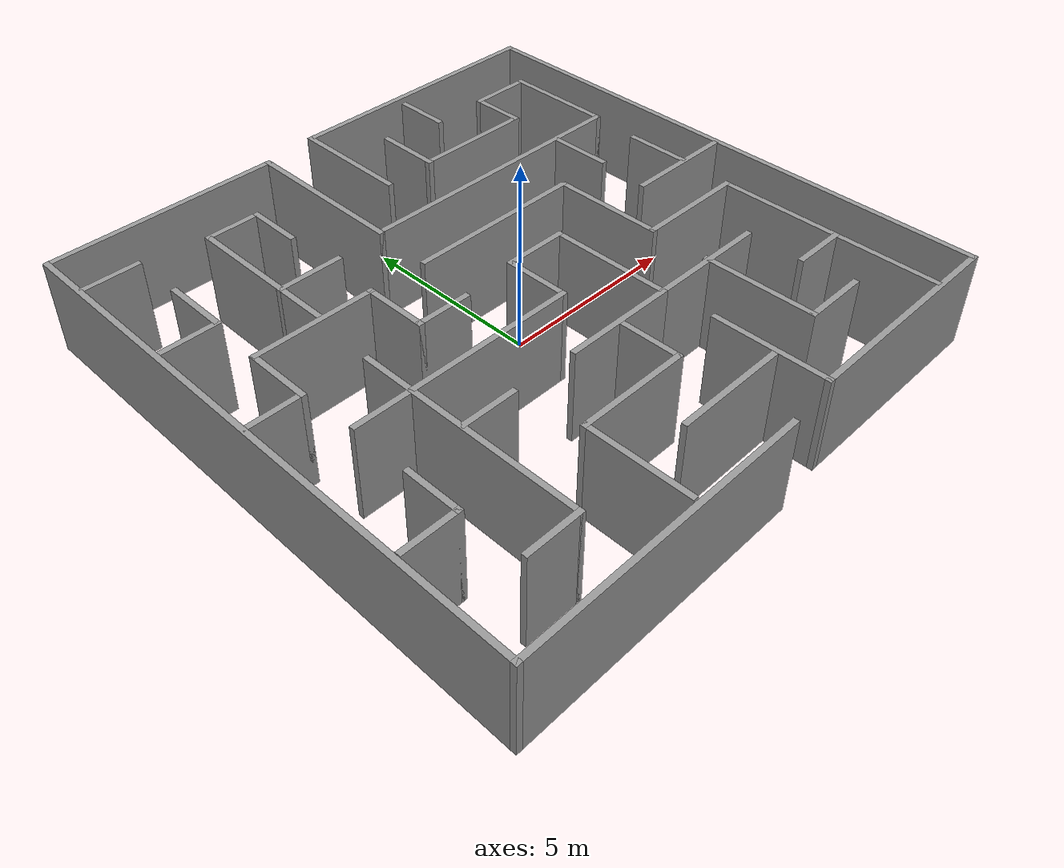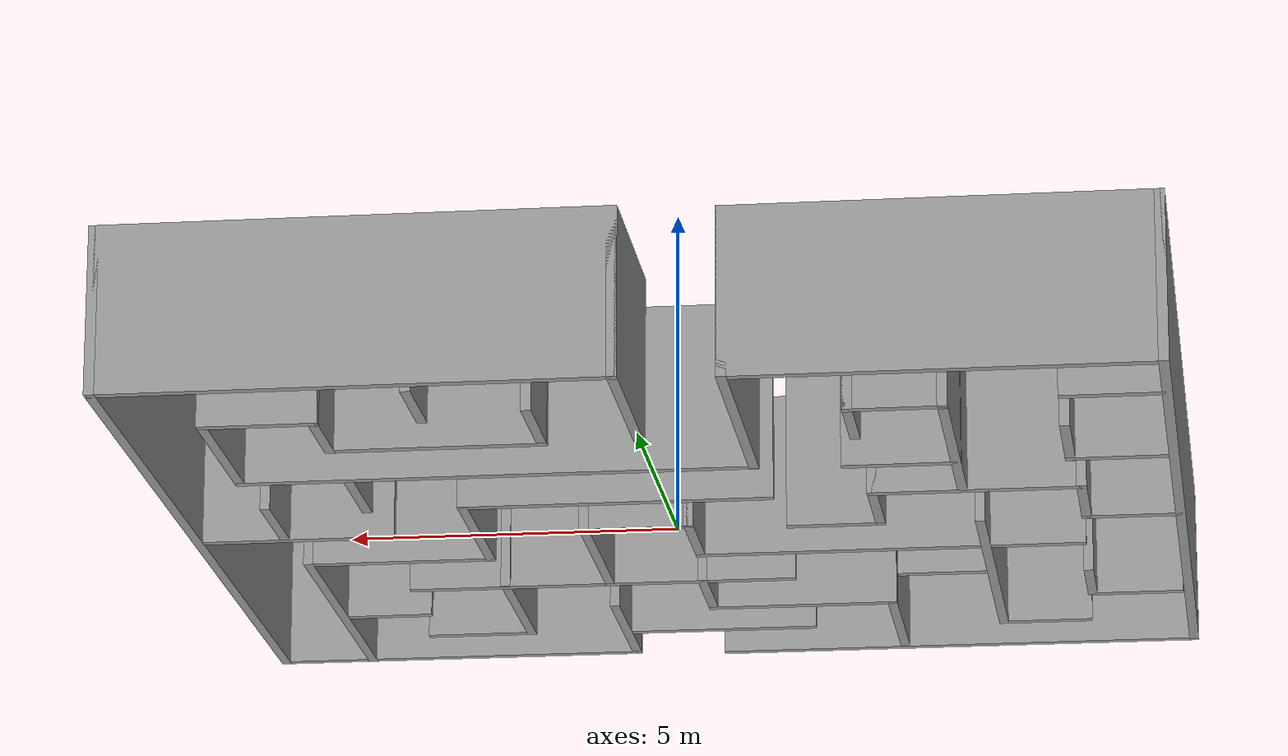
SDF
<?xml version='1.0'?>
<sdf version='1.6'>
  <model name='maze_runner'>
    <pose frame=''>-0.10353 0.142179 0 0 -0 0</pose>
    <link name='Wall_13'>
      <collision name='Wall_13_Collision'>
        <geometry>
          <box>
            <size>6.25 0.15 2.5</size>
          </box>
        </geometry>
        <pose frame=''>0 0 1.25 0 -0 0</pose>
      </collision>
      <visual name='Wall_13_Visual'>
        <pose frame=''>0 0 1.25 0 -0 0</pose>
        <geometry>
          <box>
            <size>6.25 0.15 2.5</size>
          </box>
        </geometry>
        <material>
          <script>
            <uri>file://media/materials/scripts/gazebo.material</uri>
            <name>Gazebo/Grey</name>
          </script>
          <ambient>1 1 1 1</ambient>
        </material>
      </visual>
      <pose frame=''>-4.425 7.33447 0 0 -0 0</pose>
    </link>
    <link name='Wall_14'>
      <collision name='Wall_14_Collision'>
        <geometry>
          <box>
            <size>4.5 0.15 2.5</size>
          </box>
        </geometry>
        <pose frame=''>0 0 1.25 0 -0 0</pose>
      </collision>
      <visual name='Wall_14_Visual'>
        <pose frame=''>0 0 1.25 0 -0 0</pose>
        <geometry>
          <box>
            <size>4.5 0.15 2.5</size>
          </box>
        </geometry>
        <material>
          <script>
            <uri>file://media/materials/scripts/gazebo.material</uri>
            <name>Gazebo/Grey</name>
          </script>
          <ambient>1 1 1 1</ambient>
        </material>
      </visual>
      <pose frame=''>-1.375 5.15947 0 0 0 -1.5708</pose>
    </link>
    <link name='Wall_15'>
      <collision name='Wall_15_Collision'>
        <geometry>
          <box>
            <size>7.75 0.15 2.5</size>
          </box>
        </geometry>
        <pose frame=''>0 0 1.25 0 -0 0</pose>
      </collision>
      <visual name='Wall_15_Visual'>
        <pose frame=''>0 0 1.25 0 -0 0</pose>
        <geometry>
          <box>
            <size>7.75 0.15 2.5</size>
          </box>
        </geometry>
        <material>
          <script>
            <uri>file://media/materials/scripts/gazebo.material</uri>
            <name>Gazebo/Grey</name>
          </script>
          <ambient>1 1 1 1</ambient>
        </material>
      </visual>
      <pose frame=''>2.425 2.98447 0 0 -0 0</pose>
    </link>
    <link name='Wall_16'>
      <collision name='Wall_16_Collision'>
        <geometry>
          <box>
            <size>3 0.15 2.5</size>
          </box>
        </geometry>
        <pose frame=''>0 0 1.25 0 -0 0</pose>
      </collision>
      <visual name='Wall_16_Visual'>
        <pose frame=''>0 0 1.25 0 -0 0</pose>
        <geometry>
          <box>
            <size>3 0.15 2.5</size>
          </box>
        </geometry>
        <material>
          <script>
            <uri>file://media/materials/scripts/gazebo.material</uri>
            <name>Gazebo/Grey</name>
          </script>
          <ambient>1 1 1 1</ambient>
        </material>
      </visual>
      <pose frame=''>6.225 4.40947 0 0 -0 1.5708</pose>
    </link>
    <link name='Wall_17'>
      <collision name='Wall_17_Collision'>
        <geometry>
          <box>
            <size>1.75 0.15 2.5</size>
          </box>
        </geometry>
        <pose frame=''>0 0 1.25 0 -0 0</pose>
      </collision>
      <visual name='Wall_17_Visual'>
        <pose frame=''>0 0 1.25 0 -0 0</pose>
        <geometry>
          <box>
            <size>1.75 0.15 2.5</size>
          </box>
        </geometry>
        <material>
          <script>
            <uri>file://media/materials/scripts/gazebo.material</uri>
            <name>Gazebo/Grey</name>
          </script>
          <ambient>1 1 1 1</ambient>
        </material>
      </visual>
      <pose frame=''>5.425 5.83447 0 0 -0 3.14159</pose>
    </link>
    <link name='Wall_18'>
      <collision name='Wall_18_Collision'>
        <geometry>
          <box>
            <size>1.5 0.15 2.5</size>
          </box>
        </geometry>
        <pose frame=''>0 0 1.25 0 -0 0</pose>
      </collision>
      <visual name='Wall_18_Visual'>
        <pose frame=''>0 0 1.25 0 -0 0</pose>
        <geometry>
          <box>
            <size>1.5 0.15 2.5</size>
          </box>
        </geometry>
        <material>
          <script>
            <uri>file://media/materials/scripts/gazebo.material</uri>
            <name>Gazebo/Grey</name>
          </script>
          <ambient>1 1 1 1</ambient>
        </material>
      </visual>
      <pose frame=''>4.625 5.15947 0 0 0 -1.5708</pose>
    </link>
    <link name='Wall_19'>
      <collision name='Wall_19_Collision'>
        <geometry>
          <box>
            <size>3.25 0.15 2.5</size>
          </box>
        </geometry>
        <pose frame=''>0 0 1.25 0 -0 0</pose>
      </collision>
      <visual name='Wall_19_Visual'>
        <pose frame=''>0 0 1.25 0 -0 0</pose>
        <geometry>
          <box>
            <size>3.25 0.15 2.5</size>
          </box>
        </geometry>
        <material>
          <script>
            <uri>file://media/materials/scripts/gazebo.material</uri>
            <name>Gazebo/Grey</name>
          </script>
          <ambient>1 1 1 1</ambient>
        </material>
      </visual>
      <pose frame=''>3.075 4.48447 0 0 -0 3.14159</pose>
    </link>
    <link name='Wall_20'>
      <collision name='Wall_20_Collision'>
        <geometry>
          <box>
            <size>1.75 0.15 2.5</size>
          </box>
        </geometry>
        <pose frame=''>0 0 1.25 0 -0 0</pose>
      </collision>
      <visual name='Wall_20_Visual'>
        <pose frame=''>0 0 1.25 0 -0 0</pose>
        <geometry>
          <box>
            <size>1.75 0.15 2.5</size>
          </box>
        </geometry>
        <material>
          <script>
            <uri>file://media/materials/scripts/gazebo.material</uri>
            <name>Gazebo/Grey</name>
          </script>
          <ambient>1 1 1 1</ambient>
        </material>
      </visual>
      <pose frame=''>1.525 5.28447 0 0 -0 1.5708</pose>
    </link>
    <link name='Wall_23'>
      <collision name='Wall_23_Collision'>
        <geometry>
          <box>
            <size>3.25 0.15 2.5</size>
          </box>
        </geometry>
        <pose frame=''>0 0 1.25 0 -0 0</pose>
      </collision>
      <visual name='Wall_23_Visual'>
        <pose frame=''>0 0 1.25 0 -0 0</pose>
        <geometry>
          <box>
            <size>3.25 0.15 2.5</size>
          </box>
        </geometry>
        <material>
          <script>
            <uri>file://media/materials/scripts/gazebo.material</uri>
            <name>Gazebo/Grey</name>
          </script>
          <ambient>1 1 1 1</ambient>
        </material>
      </visual>
      <pose frame=''>0.125 5.96553 0 0 -0 1.5708</pose>
    </link>
    <link name='Wall_24'>
      <collision name='Wall_24_Collision'>
        <geometry>
          <box>
            <size>7.5 0.15 2.5</size>
          </box>
        </geometry>
        <pose frame=''>0 0 1.25 0 -0 0</pose>
      </collision>
      <visual name='Wall_24_Visual'>
        <pose frame=''>0 0 1.25 0 -0 0</pose>
        <geometry>
          <box>
            <size>7.5 0.15 2.5</size>
          </box>
        </geometry>
        <material>
          <script>
            <uri>file://media/materials/scripts/gazebo.material</uri>
            <name>Gazebo/Grey</name>
          </script>
          <ambient>1 1 1 1</ambient>
        </material>
      </visual>
      <pose frame=''>3.8 7.51553 0 0 -0 0</pose>
    </link>
    <link name='Wall_25'>
      <collision name='Wall_25_Collision'>
        <geometry>
          <box>
            <size>15 0.15 2.5</size>
          </box>
        </geometry>
        <pose frame=''>0 0 1.25 0 -0 0</pose>
      </collision>
      <visual name='Wall_25_Visual'>
        <pose frame=''>0 0 1.25 0 -0 0</pose>
        <geometry>
          <box>
            <size>15 0.15 2.5</size>
          </box>
        </geometry>
        <material>
          <script>
            <uri>file://media/materials/scripts/gazebo.material</uri>
            <name>Gazebo/Grey</name>
          </script>
          <ambient>1 1 1 1</ambient>
        </material>
      </visual>
      <pose frame=''>7.475 0.090529 0 0 0 -1.5708</pose>
    </link>
    <link name='Wall_26'>
      <collision name='Wall_26_Collision'>
        <geometry>
          <box>
            <size>6 0.15 2.5</size>
          </box>
        </geometry>
        <pose frame=''>0 0 1.25 0 -0 0</pose>
      </collision>
      <visual name='Wall_26_Visual'>
        <pose frame=''>0 0 1.25 0 -0 0</pose>
        <geometry>
          <box>
            <size>6 0.15 2.5</size>
          </box>
        </geometry>
        <material>
          <script>
            <uri>file://media/materials/scripts/gazebo.material</uri>
            <name>Gazebo/Grey</name>
          </script>
          <ambient>1 1 1 1</ambient>
        </material>
      </visual>
      <pose frame=''>4.55 -7.33447 0 0 -0 3.14159</pose>
    </link>
    <link name='Wall_27'>
      <collision name='Wall_27_Collision'>
        <geometry>
          <box>
            <size>3 0.15 2.5</size>
          </box>
        </geometry>
        <pose frame=''>0 0 1.25 0 -0 0</pose>
      </collision>
      <visual name='Wall_27_Visual'>
        <pose frame=''>0 0 1.25 0 -0 0</pose>
        <geometry>
          <box>
            <size>3 0.15 2.5</size>
          </box>
        </geometry>
        <material>
          <script>
            <uri>file://media/materials/scripts/gazebo.material</uri>
            <name>Gazebo/Grey</name>
          </script>
          <ambient>1 1 1 1</ambient>
        </material>
      </visual>
      <pose frame=''>1.625 -5.90947 0 0 -0 1.5708</pose>
    </link>
    <link name='Wall_29'>
      <collision name='Wall_29_Collision'>
        <geometry>
          <box>
            <size>1.5 0.15 2.5</size>
          </box>
        </geometry>
        <pose frame=''>0 0 1.25 0 -0 0</pose>
      </collision>
      <visual name='Wall_29_Visual'>
        <pose frame=''>0 0 1.25 0 -0 0</pose>
        <geometry>
          <box>
            <size>1.5 0.15 2.5</size>
          </box>
        </geometry>
        <material>
          <script>
            <uri>file://media/materials/scripts/gazebo.material</uri>
            <name>Gazebo/Grey</name>
          </script>
          <ambient>1 1 1 1</ambient>
        </material>
      </visual>
      <pose frame=''>3.06764 6.48159 0 0 -0 1.5708</pose>
    </link>
    <link name='Wall_31'>
      <collision name='Wall_31_Collision'>
        <geometry>
          <box>
            <size>1.75 0.15 2.5</size>
          </box>
        </geometry>
        <pose frame=''>0 0 1.25 0 -0 0</pose>
      </collision>
      <visual name='Wall_31_Visual'>
        <pose frame=''>0 0 1.25 0 -0 0</pose>
        <geometry>
          <box>
            <size>1.75 0.15 2.5</size>
          </box>
        </geometry>
        <material>
          <script>
            <uri>file://media/materials/scripts/gazebo.material</uri>
            <name>Gazebo/Grey</name>
          </script>
          <ambient>1 1 1 1</ambient>
        </material>
      </visual>
      <pose frame=''>4.61921 2.16589 0 0 -0 1.5708</pose>
    </link>
    <link name='Wall_33'>
      <collision name='Wall_33_Collision'>
        <geometry>
          <box>
            <size>1.75 0.15 2.5</size>
          </box>
        </geometry>
        <pose frame=''>0 0 1.25 0 -0 0</pose>
      </collision>
      <visual name='Wall_33_Visual'>
        <pose frame=''>0 0 1.25 0 -0 0</pose>
        <geometry>
          <box>
            <size>1.75 0.15 2.5</size>
          </box>
        </geometry>
        <material>
          <script>
            <uri>file://media/materials/scripts/gazebo.material</uri>
            <name>Gazebo/Grey</name>
          </script>
          <ambient>1 1 1 1</ambient>
        </material>
      </visual>
      <pose frame=''>6.11728 0.779896 0 0 0 -1.5708</pose>
    </link>
    <link name='Wall_35'>
      <collision name='Wall_35_Collision'>
        <geometry>
          <box>
            <size>3 0.15 2.5</size>
          </box>
        </geometry>
        <pose frame=''>0 0 1.25 0 -0 0</pose>
      </collision>
      <visual name='Wall_35_Visual'>
        <pose frame=''>0 0 1.25 0 -0 0</pose>
        <geometry>
          <box>
            <size>3 0.15 2.5</size>
          </box>
        </geometry>
        <material>
          <script>
            <uri>file://media/materials/scripts/gazebo.material</uri>
            <name>Gazebo/Grey</name>
          </script>
          <ambient>1 1 1 1</ambient>
        </material>
      </visual>
      <pose frame=''>5.9372 -0.078681 0 0 -0 0</pose>
    </link>
    <link name='Wall_37'>
      <collision name='Wall_37_Collision'>
        <geometry>
          <box>
            <size>1.5 0.15 2.5</size>
          </box>
        </geometry>
        <pose frame=''>0 0 1.25 0 -0 0</pose>
      </collision>
      <visual name='Wall_37_Visual'>
        <pose frame=''>0 0 1.25 0 -0 0</pose>
        <geometry>
          <box>
            <size>1.5 0.15 2.5</size>
          </box>
        </geometry>
        <material>
          <script>
            <uri>file://media/materials/scripts/gazebo.material</uri>
            <name>Gazebo/Grey</name>
          </script>
          <ambient>1 1 1 1</ambient>
        </material>
      </visual>
      <pose frame=''>-6.70279 5.9136 0 0 -0 3.14159</pose>
    </link>
    <link name='Wall_39'>
      <collision name='Wall_39_Collision'>
        <geometry>
          <box>
            <size>1.75 0.15 2.5</size>
          </box>
        </geometry>
        <pose frame=''>0 0 1.25 0 -0 0</pose>
      </collision>
      <visual name='Wall_39_Visual'>
        <pose frame=''>0 0 1.25 0 -0 0</pose>
        <geometry>
          <box>
            <size>1.75 0.15 2.5</size>
          </box>
        </geometry>
        <material>
          <script>
            <uri>file://media/materials/scripts/gazebo.material</uri>
            <name>Gazebo/Grey</name>
          </script>
          <ambient>1 1 1 1</ambient>
        </material>
      </visual>
      <pose frame=''>-5.97429 3.66903 0 0 0 -1.5708</pose>
    </link>
    <link name='Wall_40'>
      <collision name='Wall_40_Collision'>
        <geometry>
          <box>
            <size>1.5 0.15 2.5</size>
          </box>
        </geometry>
        <pose frame=''>0 0 1.25 0 -0 0</pose>
      </collision>
      <visual name='Wall_40_Visual'>
        <pose frame=''>0 0 1.25 0 -0 0</pose>
        <geometry>
          <box>
            <size>1.5 0.15 2.5</size>
          </box>
        </geometry>
        <material>
          <script>
            <uri>file://media/materials/scripts/gazebo.material</uri>
            <name>Gazebo/Grey</name>
          </script>
          <ambient>1 1 1 1</ambient>
        </material>
      </visual>
      <pose frame=''>-6.64928 2.86903 0 0 -0 3.14159</pose>
    </link>
    <link name='Wall_42'>
      <collision name='Wall_42_Collision'>
        <geometry>
          <box>
            <size>1.5 0.15 2.5</size>
          </box>
        </geometry>
        <pose frame=''>0 0 1.25 0 -0 0</pose>
      </collision>
      <visual name='Wall_42_Visual'>
        <pose frame=''>0 0 1.25 0 -0 0</pose>
        <geometry>
          <box>
            <size>1.5 0.15 2.5</size>
          </box>
        </geometry>
        <material>
          <script>
            <uri>file://media/materials/scripts/gazebo.material</uri>
            <name>Gazebo/Grey</name>
          </script>
          <ambient>1 1 1 1</ambient>
        </material>
      </visual>
      <pose frame=''>-6.74385 -0.185686 0 0 -0 0</pose>
    </link>
    <link name='Wall_43'>
      <collision name='Wall_43_Collision'>
        <geometry>
          <box>
            <size>1.75 0.15 2.5</size>
          </box>
        </geometry>
        <pose frame=''>0 0 1.25 0 -0 0</pose>
      </collision>
      <visual name='Wall_43_Visual'>
        <pose frame=''>0 0 1.25 0 -0 0</pose>
        <geometry>
          <box>
            <size>1.75 0.15 2.5</size>
          </box>
        </geometry>
        <material>
          <script>
            <uri>file://media/materials/scripts/gazebo.material</uri>
            <name>Gazebo/Grey</name>
          </script>
          <ambient>1 1 1 1</ambient>
        </material>
      </visual>
      <pose frame=''>-6.06885 0.614314 0 0 -0 1.5708</pose>
    </link>
    <link name='Wall_44'>
      <collision name='Wall_44_Collision'>
        <geometry>
          <box>
            <size>3.25 0.15 2.5</size>
          </box>
        </geometry>
        <pose frame=''>0 0 1.25 0 -0 0</pose>
      </collision>
      <visual name='Wall_44_Visual'>
        <pose frame=''>0 0 1.25 0 -0 0</pose>
        <geometry>
          <box>
            <size>3.25 0.15 2.5</size>
          </box>
        </geometry>
        <material>
          <script>
            <uri>file://media/materials/scripts/gazebo.material</uri>
            <name>Gazebo/Grey</name>
          </script>
          <ambient>1 1 1 1</ambient>
        </material>
      </visual>
      <pose frame=''>-4.51885 1.41431 0 0 -0 0</pose>
    </link>
    <link name='Wall_45'>
      <collision name='Wall_45_Collision'>
        <geometry>
          <box>
            <size>1.75 0.15 2.5</size>
          </box>
        </geometry>
        <pose frame=''>0 0 1.25 0 -0 0</pose>
      </collision>
      <visual name='Wall_45_Visual'>
        <pose frame=''>0 0 1.25 0 -0 0</pose>
        <geometry>
          <box>
            <size>1.75 0.15 2.5</size>
          </box>
        </geometry>
        <material>
          <script>
            <uri>file://media/materials/scripts/gazebo.material</uri>
            <name>Gazebo/Grey</name>
          </script>
          <ambient>1 1 1 1</ambient>
        </material>
      </visual>
      <pose frame=''>-2.96885 0.614314 0 0 0 -1.5708</pose>
    </link>
    <link name='Wall_46'>
      <collision name='Wall_46_Collision'>
        <geometry>
          <box>
            <size>1.5 0.15 2.5</size>
          </box>
        </geometry>
        <pose frame=''>0 0 1.25 0 -0 0</pose>
      </collision>
      <visual name='Wall_46_Visual'>
        <pose frame=''>0 0 1.25 0 -0 0</pose>
        <geometry>
          <box>
            <size>1.5 0.15 2.5</size>
          </box>
        </geometry>
        <material>
          <script>
            <uri>file://media/materials/scripts/gazebo.material</uri>
            <name>Gazebo/Grey</name>
          </script>
          <ambient>1 1 1 1</ambient>
        </material>
      </visual>
      <pose frame=''>-2.29385 -0.185686 0 0 -0 0</pose>
    </link>
    <link name='Wall_48'>
      <collision name='Wall_48_Collision'>
        <geometry>
          <box>
            <size>4.25 0.15 2.5</size>
          </box>
        </geometry>
        <pose frame=''>0 0 1.25 0 -0 0</pose>
      </collision>
      <visual name='Wall_48_Visual'>
        <pose frame=''>0 0 1.25 0 -0 0</pose>
        <geometry>
          <box>
            <size>4.25 0.15 2.5</size>
          </box>
        </geometry>
        <material>
          <script>
            <uri>file://media/materials/scripts/gazebo.material</uri>
            <name>Gazebo/Grey</name>
          </script>
          <ambient>1 1 1 1</ambient>
        </material>
      </visual>
      <pose frame=''>-4.31571 3.57639 0 0 -0 1.5708</pose>
    </link>
    <link name='Wall_49'>
      <collision name='Wall_49_Collision'>
        <geometry>
          <box>
            <size>1.5 0.15 2.5</size>
          </box>
        </geometry>
        <pose frame=''>0 0 1.25 0 -0 0</pose>
      </collision>
      <visual name='Wall_49_Visual'>
        <pose frame=''>0 0 1.25 0 -0 0</pose>
        <geometry>
          <box>
            <size>1.5 0.15 2.5</size>
          </box>
        </geometry>
        <material>
          <script>
            <uri>file://media/materials/scripts/gazebo.material</uri>
            <name>Gazebo/Grey</name>
          </script>
          <ambient>1 1 1 1</ambient>
        </material>
      </visual>
      <pose frame=''>-3.64071 5.62639 0 0 -0 0</pose>
    </link>
    <link name='Wall_50'>
      <collision name='Wall_50_Collision'>
        <geometry>
          <box>
            <size>1.5 0.15 2.5</size>
          </box>
        </geometry>
        <pose frame=''>0 0 1.25 0 -0 0</pose>
      </collision>
      <visual name='Wall_50_Visual'>
        <pose frame=''>0 0 1.25 0 -0 0</pose>
        <geometry>
          <box>
            <size>1.5 0.15 2.5</size>
          </box>
        </geometry>
        <material>
          <script>
            <uri>file://media/materials/scripts/gazebo.material</uri>
            <name>Gazebo/Grey</name>
          </script>
          <ambient>1 1 1 1</ambient>
        </material>
      </visual>
      <pose frame=''>-2.96571 4.95139 0 0 0 -1.5708</pose>
    </link>
    <link name='Wall_52'>
      <collision name='Wall_52_Collision'>
        <geometry>
          <box>
            <size>1.75 0.15 2.5</size>
          </box>
        </geometry>
        <pose frame=''>0 0 1.25 0 -0 0</pose>
      </collision>
      <visual name='Wall_52_Visual'>
        <pose frame=''>0 0 1.25 0 -0 0</pose>
        <geometry>
          <box>
            <size>1.75 0.15 2.5</size>
          </box>
        </geometry>
        <material>
          <script>
            <uri>file://media/materials/scripts/gazebo.material</uri>
            <name>Gazebo/Grey</name>
          </script>
          <ambient>1 1 1 1</ambient>
        </material>
      </visual>
      <pose frame=''>-3.51571 2.86396 0 0 -0 0</pose>
    </link>
    <link name='Wall_55'>
      <collision name='Wall_55_Collision'>
        <geometry>
          <box>
            <size>1.5 0.15 2.5</size>
          </box>
        </geometry>
        <pose frame=''>0 0 1.25 0 -0 0</pose>
      </collision>
      <visual name='Wall_55_Visual'>
        <pose frame=''>0 0 1.25 0 -0 0</pose>
        <geometry>
          <box>
            <size>1.5 0.15 2.5</size>
          </box>
        </geometry>
        <material>
          <script>
            <uri>file://media/materials/scripts/gazebo.material</uri>
            <name>Gazebo/Grey</name>
          </script>
          <ambient>1 1 1 1</ambient>
        </material>
      </visual>
      <pose frame=''>-6.63685 -4.57289 0 0 -0 0</pose>
    </link>
    <link name='Wall_56'>
      <collision name='Wall_56_Collision'>
        <geometry>
          <box>
            <size>1.5 0.15 2.5</size>
          </box>
        </geometry>
        <pose frame=''>0 0 1.25 0 -0 0</pose>
      </collision>
      <visual name='Wall_56_Visual'>
        <pose frame=''>0 0 1.25 0 -0 0</pose>
        <geometry>
          <box>
            <size>1.5 0.15 2.5</size>
          </box>
        </geometry>
        <material>
          <script>
            <uri>file://media/materials/scripts/gazebo.material</uri>
            <name>Gazebo/Grey</name>
          </script>
          <ambient>1 1 1 1</ambient>
        </material>
      </visual>
      <pose frame=''>-5.96185 -3.89789 0 0 -0 1.5708</pose>
    </link>
    <link name='Wall_58'>
      <collision name='Wall_58_Collision'>
        <geometry>
          <box>
            <size>1.5 0.15 2.5</size>
          </box>
        </geometry>
        <pose frame=''>0 0 1.25 0 -0 0</pose>
      </collision>
      <visual name='Wall_58_Visual'>
        <pose frame=''>0 0 1.25 0 -0 0</pose>
        <geometry>
          <box>
            <size>1.5 0.15 2.5</size>
          </box>
        </geometry>
        <material>
          <script>
            <uri>file://media/materials/scripts/gazebo.material</uri>
            <name>Gazebo/Grey</name>
          </script>
          <ambient>1 1 1 1</ambient>
        </material>
      </visual>
      <pose frame=''>-5.13878 -6.12446 0 0 -0 0</pose>
    </link>
    <link name='Wall_59'>
      <collision name='Wall_59_Collision'>
        <geometry>
          <box>
            <size>6 0.15 2.5</size>
          </box>
        </geometry>
        <pose frame=''>0 0 1.25 0 -0 0</pose>
      </collision>
      <visual name='Wall_59_Visual'>
        <pose frame=''>0 0 1.25 0 -0 0</pose>
        <geometry>
          <box>
            <size>6 0.15 2.5</size>
          </box>
        </geometry>
        <material>
          <script>
            <uri>file://media/materials/scripts/gazebo.material</uri>
            <name>Gazebo/Grey</name>
          </script>
          <ambient>1 1 1 1</ambient>
        </material>
      </visual>
      <pose frame=''>-4.46378 -3.19946 0 0 -0 1.5708</pose>
    </link>
    <link name='Wall_61'>
      <collision name='Wall_61_Collision'>
        <geometry>
          <box>
            <size>6 0.15 2.5</size>
          </box>
        </geometry>
        <pose frame=''>0 0 1.25 0 -0 0</pose>
      </collision>
      <visual name='Wall_61_Visual'>
        <pose frame=''>0 0 1.25 0 -0 0</pose>
        <geometry>
          <box>
            <size>6 0.15 2.5</size>
          </box>
        </geometry>
        <material>
          <script>
            <uri>file://media/materials/scripts/gazebo.material</uri>
            <name>Gazebo/Grey</name>
          </script>
          <ambient>1 1 1 1</ambient>
        </material>
      </visual>
      <pose frame=''>-2.99578 -1.63025 0 0 -0 0</pose>
    </link>
    <link name='Wall_62'>
      <collision name='Wall_62_Collision'>
        <geometry>
          <box>
            <size>1.75 0.15 2.5</size>
          </box>
        </geometry>
        <pose frame=''>0 0 1.25 0 -0 0</pose>
      </collision>
      <visual name='Wall_62_Visual'>
        <pose frame=''>0 0 1.25 0 -0 0</pose>
        <geometry>
          <box>
            <size>1.75 0.15 2.5</size>
          </box>
        </geometry>
        <material>
          <script>
            <uri>file://media/materials/scripts/gazebo.material</uri>
            <name>Gazebo/Grey</name>
          </script>
          <ambient>1 1 1 1</ambient>
        </material>
      </visual>
      <pose frame=''>-0.070783 -0.830254 0 0 -0 1.5708</pose>
    </link>
    <link name='Wall_63'>
      <collision name='Wall_63_Collision'>
        <geometry>
          <box>
            <size>1.75 0.15 2.5</size>
          </box>
        </geometry>
        <pose frame=''>0 0 1.25 0 -0 0</pose>
      </collision>
      <visual name='Wall_63_Visual'>
        <pose frame=''>0 0 1.25 0 -0 0</pose>
        <geometry>
          <box>
            <size>1.75 0.15 2.5</size>
          </box>
        </geometry>
        <material>
          <script>
            <uri>file://media/materials/scripts/gazebo.material</uri>
            <name>Gazebo/Grey</name>
          </script>
          <ambient>1 1 1 1</ambient>
        </material>
      </visual>
      <pose frame=''>0.729217 -0.030254 0 0 -0 0</pose>
    </link>
    <link name='Wall_64'>
      <collision name='Wall_64_Collision'>
        <geometry>
          <box>
            <size>3.25 0.15 2.5</size>
          </box>
        </geometry>
        <pose frame=''>0 0 1.25 0 -0 0</pose>
      </collision>
      <visual name='Wall_64_Visual'>
        <pose frame=''>0 0 1.25 0 -0 0</pose>
        <geometry>
          <box>
            <size>3.25 0.15 2.5</size>
          </box>
        </geometry>
        <material>
          <script>
            <uri>file://media/materials/scripts/gazebo.material</uri>
            <name>Gazebo/Grey</name>
          </script>
          <ambient>1 1 1 1</ambient>
        </material>
      </visual>
      <pose frame=''>1.52922 -1.58025 0 0 0 -1.5708</pose>
    </link>
    <link name='Wall_65'>
      <collision name='Wall_65_Collision'>
        <geometry>
          <box>
            <size>3.25 0.15 2.5</size>
          </box>
        </geometry>
        <pose frame=''>0 0 1.25 0 -0 0</pose>
      </collision>
      <visual name='Wall_65_Visual'>
        <pose frame=''>0 0 1.25 0 -0 0</pose>
        <geometry>
          <box>
            <size>3.25 0.15 2.5</size>
          </box>
        </geometry>
        <material>
          <script>
            <uri>file://media/materials/scripts/gazebo.material</uri>
            <name>Gazebo/Grey</name>
          </script>
          <ambient>1 1 1 1</ambient>
        </material>
      </visual>
      <pose frame=''>3.07922 -3.13025 0 0 -0 0</pose>
    </link>
    <link name='Wall_67'>
      <collision name='Wall_67_Collision'>
        <geometry>
          <box>
            <size>3 0.15 2.5</size>
          </box>
        </geometry>
        <pose frame=''>0 0 1.25 0 -0 0</pose>
      </collision>
      <visual name='Wall_67_Visual'>
        <pose frame=''>0 0 1.25 0 -0 0</pose>
        <geometry>
          <box>
            <size>3 0.15 2.5</size>
          </box>
        </geometry>
        <material>
          <script>
            <uri>file://media/materials/scripts/gazebo.material</uri>
            <name>Gazebo/Grey</name>
          </script>
          <ambient>1 1 1 1</ambient>
        </material>
      </visual>
      <pose frame=''>0.104217 -3.13025 0 0 -0 3.14159</pose>
    </link>
    <link name='Wall_69'>
      <collision name='Wall_69_Collision'>
        <geometry>
          <box>
            <size>1.75 0.15 2.5</size>
          </box>
        </geometry>
        <pose frame=''>0 0 1.25 0 -0 0</pose>
      </collision>
      <visual name='Wall_69_Visual'>
        <pose frame=''>0 0 1.25 0 -0 0</pose>
        <geometry>
          <box>
            <size>1.75 0.15 2.5</size>
          </box>
        </geometry>
        <material>
          <script>
            <uri>file://media/materials/scripts/gazebo.material</uri>
            <name>Gazebo/Grey</name>
          </script>
          <ambient>1 1 1 1</ambient>
        </material>
      </visual>
      <pose frame=''>0.071497 -3.92832 0 0 0 -1.5708</pose>
    </link>
    <link name='Wall_70'>
      <collision name='Wall_70_Collision'>
        <geometry>
          <box>
            <size>3 0.15 2.5</size>
          </box>
        </geometry>
        <pose frame=''>0 0 1.25 0 -0 0</pose>
      </collision>
      <visual name='Wall_70_Visual'>
        <pose frame=''>0 0 1.25 0 -0 0</pose>
        <geometry>
          <box>
            <size>3 0.15 2.5</size>
          </box>
        </geometry>
        <material>
          <script>
            <uri>file://media/materials/scripts/gazebo.material</uri>
            <name>Gazebo/Grey</name>
          </script>
          <ambient>1 1 1 1</ambient>
        </material>
      </visual>
      <pose frame=''>-1.3535 -4.72832 0 0 -0 3.14159</pose>
    </link>
    <link name='Wall_71'>
      <collision name='Wall_71_Collision'>
        <geometry>
          <box>
            <size>2.75 0.15 2.5</size>
          </box>
        </geometry>
        <pose frame=''>0 0 1.25 0 -0 0</pose>
      </collision>
      <visual name='Wall_71_Visual'>
        <pose frame=''>0 0 1.25 0 -0 0</pose>
        <geometry>
          <box>
            <size>2.75 0.15 2.5</size>
          </box>
        </geometry>
        <material>
          <script>
            <uri>file://media/materials/scripts/gazebo.material</uri>
            <name>Gazebo/Grey</name>
          </script>
          <ambient>1 1 1 1</ambient>
        </material>
      </visual>
      <pose frame=''>-2.7785 -6.02832 0 0 0 -1.5708</pose>
    </link>
    <link name='Wall_76'>
      <collision name='Wall_76_Collision'>
        <geometry>
          <box>
            <size>3 0.15 2.5</size>
          </box>
        </geometry>
        <pose frame=''>0 0 1.25 0 -0 0</pose>
      </collision>
      <visual name='Wall_76_Visual'>
        <pose frame=''>0 0 1.25 0 -0 0</pose>
        <geometry>
          <box>
            <size>3 0.15 2.5</size>
          </box>
        </geometry>
        <material>
          <script>
            <uri>file://media/materials/scripts/gazebo.material</uri>
            <name>Gazebo/Grey</name>
          </script>
          <ambient>1 1 1 1</ambient>
        </material>
      </visual>
      <pose frame=''>0.05193 -6.07096 0 0 -0 0</pose>
    </link>
    <link name='Wall_78'>
      <collision name='Wall_78_Collision'>
        <geometry>
          <box>
            <size>1.5 0.15 2.5</size>
          </box>
        </geometry>
        <pose frame=''>0 0 1.25 0 -0 0</pose>
      </collision>
      <visual name='Wall_78_Visual'>
        <pose frame=''>0 0 1.25 0 -0 0</pose>
        <geometry>
          <box>
            <size>1.5 0.15 2.5</size>
          </box>
        </geometry>
        <material>
          <script>
            <uri>file://media/materials/scripts/gazebo.material</uri>
            <name>Gazebo/Grey</name>
          </script>
          <ambient>1 1 1 1</ambient>
        </material>
      </visual>
      <pose frame=''>-3.74771 -3.07482 0 0 -0 0</pose>
    </link>
    <link name='Wall_8'>
      <collision name='Wall_8_Collision'>
        <geometry>
          <box>
            <size>7.75 0.15 2.5</size>
          </box>
        </geometry>
        <pose frame=''>0 0 1.25 0 -0 0</pose>
      </collision>
      <visual name='Wall_8_Visual'>
        <pose frame=''>0 0 1.25 0 -0 0</pose>
        <geometry>
          <box>
            <size>7.75 0.15 2.5</size>
          </box>
        </geometry>
        <material>
          <script>
            <uri>file://media/materials/scripts/gazebo.material</uri>
            <name>Gazebo/Grey</name>
          </script>
          <ambient>1 1 1 1</ambient>
        </material>
      </visual>
      <pose frame=''>-3.675 -7.51553 0 0 -0 3.14159</pose>
    </link>
    <link name='Wall_80'>
      <collision name='Wall_80_Collision'>
        <geometry>
          <box>
            <size>3 0.15 2.5</size>
          </box>
        </geometry>
        <pose frame=''>0 0 1.25 0 -0 0</pose>
      </collision>
      <visual name='Wall_80_Visual'>
        <pose frame=''>0 0 1.25 0 -0 0</pose>
        <geometry>
          <box>
            <size>3 0.15 2.5</size>
          </box>
        </geometry>
        <material>
          <script>
            <uri>file://media/materials/scripts/gazebo.material</uri>
            <name>Gazebo/Grey</name>
          </script>
          <ambient>1 1 1 1</ambient>
        </material>
      </visual>
      <pose frame=''>3.17464 -4.49982 0 0 0 -1.5708</pose>
    </link>
    <link name='Wall_81'>
      <collision name='Wall_81_Collision'>
        <geometry>
          <box>
            <size>1.75 0.15 2.5</size>
          </box>
        </geometry>
        <pose frame=''>0 0 1.25 0 -0 0</pose>
      </collision>
      <visual name='Wall_81_Visual'>
        <pose frame=''>0 0 1.25 0 -0 0</pose>
        <geometry>
          <box>
            <size>1.75 0.15 2.5</size>
          </box>
        </geometry>
        <material>
          <script>
            <uri>file://media/materials/scripts/gazebo.material</uri>
            <name>Gazebo/Grey</name>
          </script>
          <ambient>1 1 1 1</ambient>
        </material>
      </visual>
      <pose frame=''>3.97464 -5.92482 0 0 -0 0</pose>
    </link>
    <link name='Wall_85'>
      <collision name='Wall_85_Collision'>
        <geometry>
          <box>
            <size>4.75 0.15 2.5</size>
          </box>
        </geometry>
        <pose frame=''>0 0 1.25 0 -0 0</pose>
      </collision>
      <visual name='Wall_85_Visual'>
        <pose frame=''>0 0 1.25 0 -0 0</pose>
        <geometry>
          <box>
            <size>4.75 0.15 2.5</size>
          </box>
        </geometry>
        <material>
          <script>
            <uri>file://media/materials/scripts/gazebo.material</uri>
            <name>Gazebo/Grey</name>
          </script>
          <ambient>1 1 1 1</ambient>
        </material>
      </visual>
      <pose frame=''>0.873427 1.36589 0 0 -0 0</pose>
    </link>
    <link name='Wall_86'>
      <collision name='Wall_86_Collision'>
        <geometry>
          <box>
            <size>3 0.15 2.5</size>
          </box>
        </geometry>
        <pose frame=''>0 0 1.25 0 -0 0</pose>
      </collision>
      <visual name='Wall_86_Visual'>
        <pose frame=''>0 0 1.25 0 -0 0</pose>
        <geometry>
          <box>
            <size>3 0.15 2.5</size>
          </box>
        </geometry>
        <material>
          <script>
            <uri>file://media/materials/scripts/gazebo.material</uri>
            <name>Gazebo/Grey</name>
          </script>
          <ambient>1 1 1 1</ambient>
        </material>
      </visual>
      <pose frame=''>3.17343 -0.059114 0 0 0 -1.5708</pose>
    </link>
    <link name='Wall_87'>
      <collision name='Wall_87_Collision'>
        <geometry>
          <box>
            <size>3 0.15 2.5</size>
          </box>
        </geometry>
        <pose frame=''>0 0 1.25 0 -0 0</pose>
      </collision>
      <visual name='Wall_87_Visual'>
        <pose frame=''>0 0 1.25 0 -0 0</pose>
        <geometry>
          <box>
            <size>3 0.15 2.5</size>
          </box>
        </geometry>
        <material>
          <script>
            <uri>file://media/materials/scripts/gazebo.material</uri>
            <name>Gazebo/Grey</name>
          </script>
          <ambient>1 1 1 1</ambient>
        </material>
      </visual>
      <pose frame=''>4.59843 -1.48411 0 0 -0 0</pose>
    </link>
    <link name='Wall_88'>
      <collision name='Wall_88_Collision'>
        <geometry>
          <box>
            <size>6 0.15 2.5</size>
          </box>
        </geometry>
        <pose frame=''>0 0 1.25 0 -0 0</pose>
      </collision>
      <visual name='Wall_88_Visual'>
        <pose frame=''>0 0 1.25 0 -0 0</pose>
        <geometry>
          <box>
            <size>6 0.15 2.5</size>
          </box>
        </geometry>
        <material>
          <script>
            <uri>file://media/materials/scripts/gazebo.material</uri>
            <name>Gazebo/Grey</name>
          </script>
          <ambient>1 1 1 1</ambient>
        </material>
      </visual>
      <pose frame=''>6.02343 -4.40911 0 0 0 -1.5708</pose>
    </link>
    <link name='Wall_9'>
      <collision name='Wall_9_Collision'>
        <geometry>
          <box>
            <size>15 0.15 2.5</size>
          </box>
        </geometry>
        <pose frame=''>0 0 1.25 0 -0 0</pose>
      </collision>
      <visual name='Wall_9_Visual'>
        <pose frame=''>0 0 1.25 0 -0 0</pose>
        <geometry>
          <box>
            <size>15 0.15 2.5</size>
          </box>
        </geometry>
        <material>
          <script>
            <uri>file://media/materials/scripts/gazebo.material</uri>
            <name>Gazebo/Grey</name>
          </script>
          <ambient>1 1 1 1</ambient>
        </material>
      </visual>
      <pose frame=''>-7.475 -0.090529 0 0 -0 1.5708</pose>
    </link>
    <link name='Wall_90'>
      <collision name='Wall_90_Collision'>
        <geometry>
          <box>
            <size>1.5 0.15 2.5</size>
          </box>
        </geometry>
        <pose frame=''>0 0 1.25 0 -0 0</pose>
      </collision>
      <visual name='Wall_90_Visual'>
        <pose frame=''>0 0 1.25 0 -0 0</pose>
        <geometry>
          <box>
            <size>1.5 0.15 2.5</size>
          </box>
        </geometry>
        <material>
          <script>
            <uri>file://media/materials/scripts/gazebo.material</uri>
            <name>Gazebo/Grey</name>
          </script>
          <ambient>1 1 1 1</ambient>
        </material>
      </visual>
      <pose frame=''>5.34771 -4.62639 0 0 -0 0</pose>
    </link>
    <static>1</static>
  </model>
</sdf>
